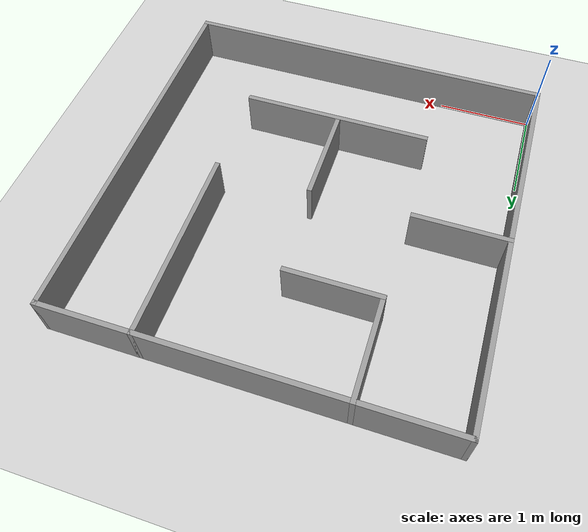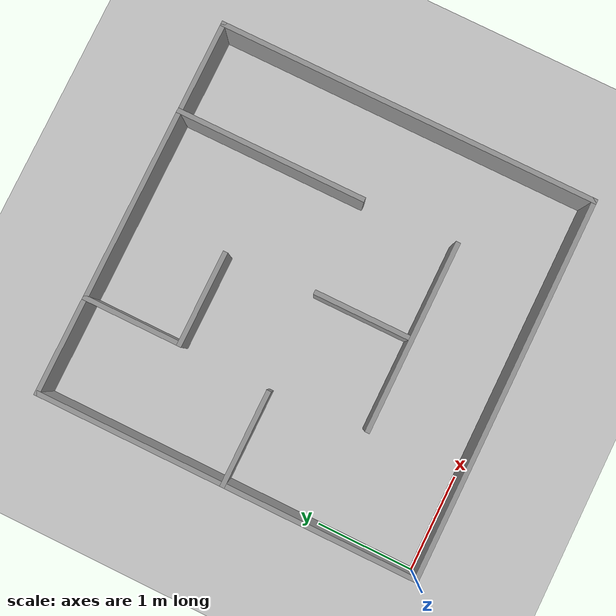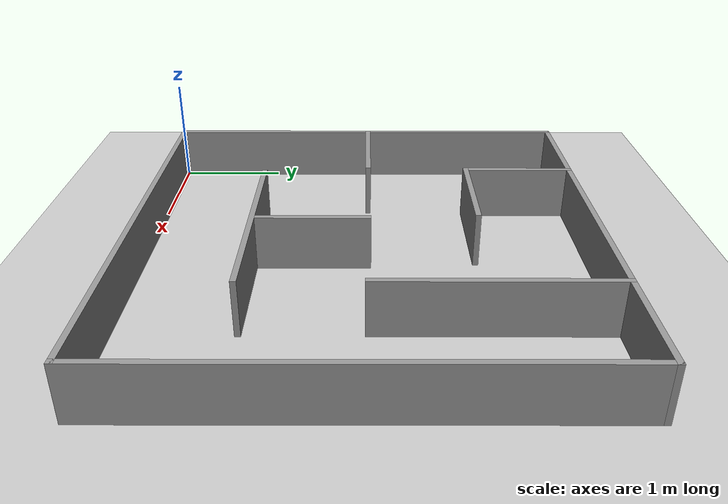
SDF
<sdf version='1.4'>
  <world name='default'>
    <!-- A global light source -->
    <include>
      <uri>model://sun</uri>
    </include>

    <!-- A ground plane -->
    <include>
      <uri>model://ground_plane</uri>
    </include>

    <physics type="ode">
      <real_time_update_rate>1000.0</real_time_update_rate>
      <max_step_size>0.001</max_step_size>
      <real_time_factor>1</real_time_factor>
      <ode>
        <solver>
          <type>quick</type>
          <iters>150</iters>
          <precon_iters>0</precon_iters>
          <sor>1.400000</sor>
          <use_dynamic_moi_rescaling>1</use_dynamic_moi_rescaling>
        </solver>
        <constraints>
          <cfm>0.00001</cfm>
          <erp>0.2</erp>
          <contact_max_correcting_vel>2000.000000</contact_max_correcting_vel>
          <contact_surface_layer>0.01000</contact_surface_layer>
        </constraints>
      </ode>
    </physics>

    <!-- A turtlebot symbol -->
    <include>
      <uri>model://turtlebot3_maze_navigation</uri>
    </include>

    <scene>
      <ambient>0.4 0.4 0.4 1</ambient>
      <background>0.7 0.7 0.7 1</background>
      <shadows>true</shadows>
    </scene>

    <gui fullscreen='0'>
      <camera name='user_camera'>
        <pose>0.0 0.0 17.0 0 1.5708 0</pose>
        <view_controller>orbit</view_controller>
      </camera>
    </gui>
  </world>
</sdf>

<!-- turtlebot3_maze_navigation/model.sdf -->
<sdf version='1.6'>
  <model name='turtlebot3_maze_navigation'>
    <pose frame=''>1.975 1.975 0 0 -0 0</pose>
    <link name='Wall_11'>
      <collision name='Wall_11_Collision'>
        <geometry>
          <box>
            <size>4 0.05 0.5</size>
          </box>
        </geometry>
        <pose frame=''>0 0 0.25 0 -0 0</pose>
      </collision>
      <visual name='Wall_11_Visual'>
        <pose frame=''>0 0 0.25 0 -0 0</pose>
        <geometry>
          <box>
            <size>4 0.05 0.5</size>
          </box>
        </geometry>
        <material>
          <script>
            <uri>file://media/materials/scripts/gazebo.material</uri>
            <name>Gazebo/Grey</name>
          </script>
          <ambient>1 1 1 1</ambient>
        </material>
        <meta>
          <layer>0</layer>
        </meta>
      </visual>
      <pose frame=''>-0 1.975 0 0 -0 0</pose>
    </link>
    <link name='Wall_13'>
      <collision name='Wall_13_Collision'>
        <geometry>
          <box>
            <size>2 0.05 0.5</size>
          </box>
        </geometry>
        <pose frame=''>0 0 0.25 0 -0 0</pose>
      </collision>
      <visual name='Wall_13_Visual'>
        <pose frame=''>0 0 0.25 0 -0 0</pose>
        <geometry>
          <box>
            <size>2 0.05 0.5</size>
          </box>
        </geometry>
        <material>
          <script>
            <uri>file://media/materials/scripts/gazebo.material</uri>
            <name>Gazebo/Grey</name>
          </script>
          <ambient>1 1 1 1</ambient>
        </material>
        <meta>
          <layer>0</layer>
        </meta>
      </visual>
      <pose frame=''>0.05 -0.975 0 0 -0 3.14159</pose>
    </link>
    <link name='Wall_16'>
      <collision name='Wall_16_Collision'>
        <geometry>
          <box>
            <size>1 0.05 0.5</size>
          </box>
        </geometry>
        <pose frame=''>0 0 0.25 0 -0 0</pose>
      </collision>
      <visual name='Wall_16_Visual'>
        <pose frame=''>0 0 0.25 0 -0 0</pose>
        <geometry>
          <box>
            <size>1 0.05 0.5</size>
          </box>
        </geometry>
        <material>
          <script>
            <uri>file://media/materials/scripts/gazebo.material</uri>
            <name>Gazebo/Grey</name>
          </script>
          <ambient>1 1 1 1</ambient>
        </material>
        <meta>
          <layer>0</layer>
        </meta>
      </visual>
      <pose frame=''>0.025 -0.45 0 0 -0 -1.5708</pose>
    </link>
    <link name='Wall_25'>
      <collision name='Wall_25_Collision'>
        <geometry>
          <box>
            <size>2 0.05 0.5</size>
          </box>
        </geometry>
        <pose frame=''>0 0 0.25 0 -0 0</pose>
      </collision>
      <visual name='Wall_25_Visual'>
        <pose frame=''>0 0 0.25 0 -0 0</pose>
        <geometry>
          <box>
            <size>2 0.05 0.5</size>
          </box>
        </geometry>
        <material>
          <script>
            <uri>file://media/materials/scripts/gazebo.material</uri>
            <name>Gazebo/Grey</name>
          </script>
          <ambient>1 1 1 1</ambient>
        </material>
        <meta>
          <layer>0</layer>
        </meta>
      </visual>
      <pose frame=''>1.025 1 0 0 -0 -1.5708</pose>
    </link>
    <link name='Wall_27'>
      <collision name='Wall_27_Collision'>
        <geometry>
          <box>
            <size>1 0.05 0.5</size>
          </box>
        </geometry>
        <pose frame=''>0 0 0.25 0 -0 0</pose>
      </collision>
      <visual name='Wall_27_Visual'>
        <pose frame=''>0 0 0.25 0 -0 0</pose>
        <geometry>
          <box>
            <size>1 0.05 0.5</size>
          </box>
        </geometry>
        <material>
          <script>
            <uri>file://media/materials/scripts/gazebo.material</uri>
            <name>Gazebo/Grey</name>
          </script>
          <ambient>1 1 1 1</ambient>
        </material>
        <meta>
          <layer>0</layer>
        </meta>
      </visual>
      <pose frame=''>-0.975 1.5 0 0 -0 -1.5708</pose>
    </link>
    <link name='Wall_33'>
      <collision name='Wall_33_Collision'>
        <geometry>
          <box>
            <size>1 0.05 0.5</size>
          </box>
        </geometry>
        <pose frame=''>0 0 0.25 0 -0 0</pose>
      </collision>
      <visual name='Wall_33_Visual'>
        <pose frame=''>0 0 0.25 0 -0 0</pose>
        <geometry>
          <box>
            <size>1 0.05 0.5</size>
          </box>
        </geometry>
        <material>
          <script>
            <uri>file://media/materials/scripts/gazebo.material</uri>
            <name>Gazebo/Grey</name>
          </script>
          <ambient>1 1 1 1</ambient>
        </material>
        <meta>
          <layer>0</layer>
        </meta>
      </visual>
      <pose frame=''>-0.5 0.975 0 0 -0 0</pose>
    </link>
    <link name='Wall_36'>
      <collision name='Wall_36_Collision'>
        <geometry>
          <box>
            <size>1 0.05 0.5</size>
          </box>
        </geometry>
        <pose frame=''>0 0 0.25 0 -0 0</pose>
      </collision>
      <visual name='Wall_36_Visual'>
        <pose frame=''>0 0 0.25 0 -0 0</pose>
        <geometry>
          <box>
            <size>1 0.05 0.5</size>
          </box>
        </geometry>
        <material>
          <script>
            <uri>file://media/materials/scripts/gazebo.material</uri>
            <name>Gazebo/Grey</name>
          </script>
          <ambient>1 1 1 1</ambient>
        </material>
        <meta>
          <layer>0</layer>
        </meta>
      </visual>
      <pose frame=''>-1.5 0.025 0 0 -0 0</pose>
    </link>
    <link name='Wall_5'>
      <collision name='Wall_5_Collision'>
        <geometry>
          <box>
            <size>4 0.05 0.5</size>
          </box>
        </geometry>
        <pose frame=''>0 0 0.25 0 -0 0</pose>
      </collision>
      <visual name='Wall_5_Visual'>
        <pose frame=''>0 0 0.25 0 -0 0</pose>
        <geometry>
          <box>
            <size>4 0.05 0.5</size>
          </box>
        </geometry>
        <material>
          <script>
            <uri>file://media/materials/scripts/gazebo.material</uri>
            <name>Gazebo/Grey</name>
          </script>
          <ambient>1 1 1 1</ambient>
        </material>
        <meta>
          <layer>0</layer>
        </meta>
      </visual>
      <pose frame=''>-1.975 -0 0 0 -0 1.5708</pose>
    </link>
    <link name='Wall_7'>
      <collision name='Wall_7_Collision'>
        <geometry>
          <box>
            <size>4 0.05 0.5</size>
          </box>
        </geometry>
        <pose frame=''>0 0 0.25 0 -0 0</pose>
      </collision>
      <visual name='Wall_7_Visual'>
        <pose frame=''>0 0 0.25 0 -0 0</pose>
        <geometry>
          <box>
            <size>4 0.05 0.5</size>
          </box>
        </geometry>
        <material>
          <script>
            <uri>file://media/materials/scripts/gazebo.material</uri>
            <name>Gazebo/Grey</name>
          </script>
          <ambient>1 1 1 1</ambient>
        </material>
        <meta>
          <layer>0</layer>
        </meta>
      </visual>
      <pose frame=''>-0 -1.975 0 0 -0 0</pose>
    </link>
    <link name='Wall_9'>
      <collision name='Wall_9_Collision'>
        <geometry>
          <box>
            <size>4 0.05 0.5</size>
          </box>
        </geometry>
        <pose frame=''>0 0 0.25 0 -0 0</pose>
      </collision>
      <visual name='Wall_9_Visual'>
        <pose frame=''>0 0 0.25 0 -0 0</pose>
        <geometry>
          <box>
            <size>4 0.05 0.5</size>
          </box>
        </geometry>
        <material>
          <script>
            <uri>file://media/materials/scripts/gazebo.material</uri>
            <name>Gazebo/Grey</name>
          </script>
          <ambient>1 1 1 1</ambient>
        </material>
        <meta>
          <layer>0</layer>
        </meta>
      </visual>
      <pose frame=''>1.975 -0 0 0 -0 1.5708</pose>
    </link>
    <static>1</static>
  </model>
</sdf>
